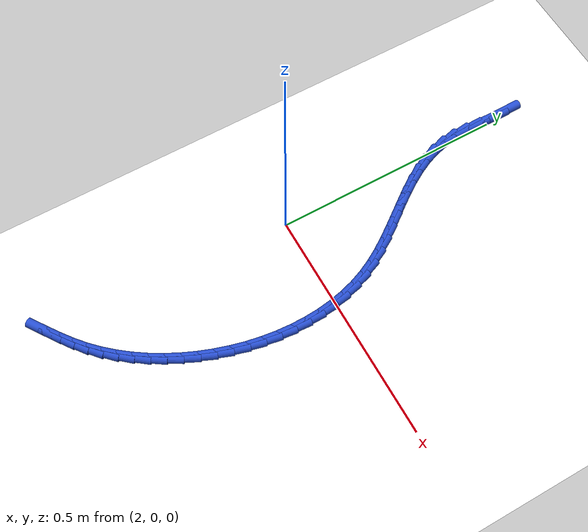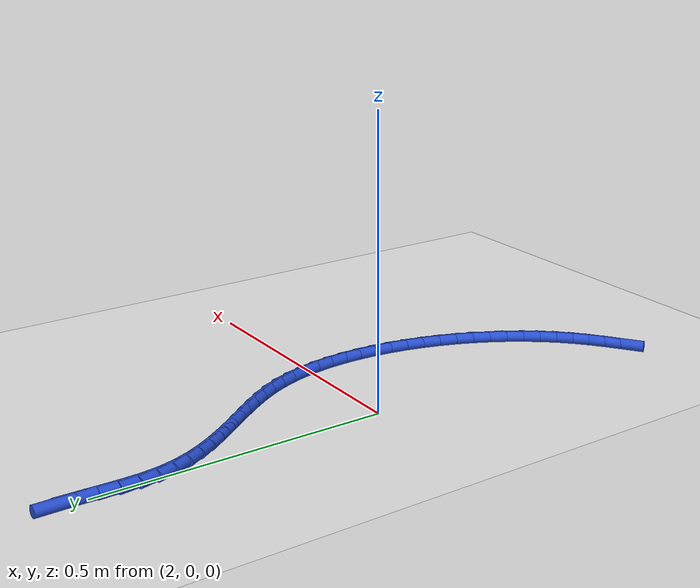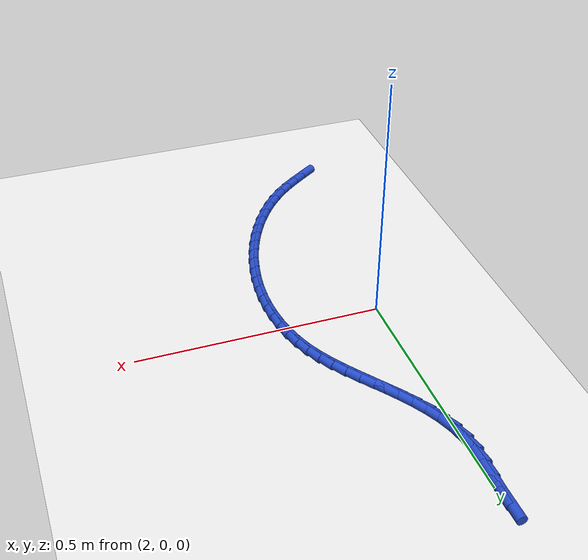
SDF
<sdf version="1.6">
 <world name="default">
  <model name="ground_plane">
   <static>1</static>
   <link name="link">
    <collision name="collision">
     <geometry><plane><normal>0 0 1</normal><size>100 100</size></plane></geometry>
     <surface><friction><ode><mu>100</mu><mu2>50</mu2></ode></friction></surface>
    </collision>
    <visual name="visual">
     <cast_shadows>0</cast_shadows>
     <geometry><plane><normal>0 0 1</normal><size>100 100</size></plane></geometry>
     <material>
      <script><uri>file://media/materials/scripts/gazebo.material</uri><name>Gazebo/WhiteGlow</name></script>
     </material>
    </visual>
   </link>
  </model>
  <model name="line">
   <link name="link_100">
    <pose>1.9956747535121913 0.5427967264100142 0.01 0 1.57 -1.5616004342012524</pose>
    <collision name="collision">
     <geometry><cylinder><radius>0.01</radius><length>0.08</length></cylinder></geometry>
    </collision>
    <visual name="visual">
     <material>
      <script><name>Gazebo/Blue</name><uri>file://media/materials/scripts/gazebo.material</uri></script>
     </material>
     <geometry><cylinder><radius>0.01</radius><length>0.08</length></cylinder></geometry>
    </visual>
   </link>
   <link name="link_101">
    <pose>1.9959567368488869 0.5121335379058366 0.01 0 1.57 1.542704888067595</pose>
    <collision name="collision">
     <geometry><cylinder><radius>0.01</radius><length>0.08</length></cylinder></geometry>
    </collision>
    <visual name="visual">
     <material>
      <script><name>Gazebo/Blue</name><uri>file://media/materials/scripts/gazebo.material</uri></script>
     </material>
     <geometry><cylinder><radius>0.01</radius><length>0.08</length></cylinder></geometry>
    </visual>
   </link>
   <link name="link_102">
    <pose>1.9950695715106797 0.4805605034333756 0.01 0 1.57 1.548982520895223</pose>
    <collision name="collision">
     <geometry><cylinder><radius>0.01</radius><length>0.08</length></cylinder></geometry>
    </collision>
    <visual name="visual">
     <material>
      <script><name>Gazebo/Blue</name><uri>file://media/materials/scripts/gazebo.material</uri></script>
     </material>
     <geometry><cylinder><radius>0.01</radius><length>0.08</length></cylinder></geometry>
    </visual>
   </link>
   <link name="link_103">
    <pose>1.9943761075960889 0.44877540728026327 0.01 0 1.57 -1.5432280771006837</pose>
    <collision name="collision">
     <geometry><cylinder><radius>0.01</radius><length>0.08</length></cylinder></geometry>
    </collision>
    <visual name="visual">
     <material>
      <script><name>Gazebo/Blue</name><uri>file://media/materials/scripts/gazebo.material</uri></script>
     </material>
     <geometry><cylinder><radius>0.01</radius><length>0.08</length></cylinder></geometry>
    </visual>
   </link>
   <link name="link_104">
    <pose>1.995239195203635 0.41747603373413117 0.01 0 1.57 -1.4464241379671023</pose>
    <collision name="collision">
     <geometry><cylinder><radius>0.01</radius><length>0.08</length></cylinder></geometry>
    </collision>
    <visual name="visual">
     <material>
      <script><name>Gazebo/Blue</name><uri>file://media/materials/scripts/gazebo.material</uri></script>
     </material>
     <geometry><cylinder><radius>0.01</radius><length>0.08</length></cylinder></geometry>
    </visual>
   </link>
   <link name="link_105">
    <pose>1.9990052271721368 0.38735198643101076 0.01 0 1.57 -1.3220938351287175</pose>
    <collision name="collision">
     <geometry><cylinder><radius>0.01</radius><length>0.08</length></cylinder></geometry>
    </collision>
    <visual name="visual">
     <material>
      <script><name>Gazebo/Blue</name><uri>file://media/materials/scripts/gazebo.material</uri></script>
     </material>
     <geometry><cylinder><radius>0.01</radius><length>0.08</length></cylinder></geometry>
    </visual>
   </link>
   <link name="link_106">
    <pose>2.0062759272005732 0.35872270538905116 0.01 0 1.57 -1.2089467725305336</pose>
    <collision name="collision">
     <geometry><cylinder><radius>0.01</radius><length>0.08</length></cylinder></geometry>
    </collision>
    <visual name="visual">
     <material>
      <script><name>Gazebo/Blue</name><uri>file://media/materials/scripts/gazebo.material</uri></script>
     </material>
     <geometry><cylinder><radius>0.01</radius><length>0.08</length></cylinder></geometry>
    </visual>
   </link>
   <link name="link_107">
    <pose>2.0166201911352037 0.3313942277281797 0.01 0 1.57 -1.1138434668605544</pose>
    <collision name="collision">
     <geometry><cylinder><radius>0.01</radius><length>0.08</length></cylinder></geometry>
    </collision>
    <visual name="visual">
     <material>
      <script><name>Gazebo/Blue</name><uri>file://media/materials/scripts/gazebo.material</uri></script>
     </material>
     <geometry><cylinder><radius>0.01</radius><length>0.08</length></cylinder></geometry>
    </visual>
   </link>
   <link name="link_108">
    <pose>2.0295308856788794 0.3051347976462276 0.01 0 1.57 -1.0386108582251625</pose>
    <collision name="collision">
     <geometry><cylinder><radius>0.01</radius><length>0.08</length></cylinder></geometry>
    </collision>
    <visual name="visual">
     <material>
      <script><name>Gazebo/Blue</name><uri>file://media/materials/scripts/gazebo.material</uri></script>
     </material>
     <geometry><cylinder><radius>0.01</radius><length>0.08</length></cylinder></geometry>
    </visual>
   </link>
   <link name="link_109">
    <pose>2.0445008775344506 0.2797126593410275 0.01 0 1.57 -0.9834145669036674</pose>
    <collision name="collision">
     <geometry><cylinder><radius>0.01</radius><length>0.08</length></cylinder></geometry>
    </collision>
    <visual name="visual">
     <material>
      <script><name>Gazebo/Blue</name><uri>file://media/materials/scripts/gazebo.material</uri></script>
     </material>
     <geometry><cylinder><radius>0.01</radius><length>0.08</length></cylinder></geometry>
    </visual>
   </link>
   <link name="link_110">
    <pose>2.0610230334047674 0.2548960570104107 0.01 0 1.57 -0.9476264508870635</pose>
    <collision name="collision">
     <geometry><cylinder><radius>0.01</radius><length>0.08</length></cylinder></geometry>
    </collision>
    <visual name="visual">
     <material>
      <script><name>Gazebo/Blue</name><uri>file://media/materials/scripts/gazebo.material</uri></script>
     </material>
     <geometry><cylinder><radius>0.01</radius><length>0.08</length></cylinder></geometry>
    </visual>
   </link>
   <link name="link_111">
    <pose>2.0785902199926802 0.2304532348522091 0.01 0 1.57 -0.9304767165298805</pose>
    <collision name="collision">
     <geometry><cylinder><radius>0.01</radius><length>0.08</length></cylinder></geometry>
    </collision>
    <visual name="visual">
     <material>
      <script><name>Gazebo/Blue</name><uri>file://media/materials/scripts/gazebo.material</uri></script>
     </material>
     <geometry><cylinder><radius>0.01</radius><length>0.08</length></cylinder></geometry>
    </visual>
   </link>
   <link name="link_112">
    <pose>2.0966953040010403 0.20615243706425412 0.01 0 1.57 -0.9314288822455244</pose>
    <collision name="collision">
     <geometry><cylinder><radius>0.01</radius><length>0.08</length></cylinder></geometry>
    </collision>
    <visual name="visual">
     <material>
      <script><name>Gazebo/Blue</name><uri>file://media/materials/scripts/gazebo.material</uri></script>
     </material>
     <geometry><cylinder><radius>0.01</radius><length>0.08</length></cylinder></geometry>
    </visual>
   </link>
   <link name="link_113">
    <pose>2.114831152132697 0.1817619078443783 0.01 0 1.57 -0.9503314775667263</pose>
    <collision name="collision">
     <geometry><cylinder><radius>0.01</radius><length>0.08</length></cylinder></geometry>
    </collision>
    <visual name="visual">
     <material>
      <script><name>Gazebo/Blue</name><uri>file://media/materials/scripts/gazebo.material</uri></script>
     </material>
     <geometry><cylinder><radius>0.01</radius><length>0.08</length></cylinder></geometry>
    </visual>
   </link>
   <link name="link_114">
    <pose>2.1324906310905014 0.15704989139041303 0.01 0 1.57 -0.9873983628609555</pose>
    <collision name="collision">
     <geometry><cylinder><radius>0.01</radius><length>0.08</length></cylinder></geometry>
    </collision>
    <visual name="visual">
     <material>
      <script><name>Gazebo/Blue</name><uri>file://media/materials/scripts/gazebo.material</uri></script>
     </material>
     <geometry><cylinder><radius>0.01</radius><length>0.08</length></cylinder></geometry>
    </visual>
   </link>
   <link name="link_115">
    <pose>2.1491666075773046 0.13178463190018988 0.01 0 1.57 -1.0430267710037908</pose>
    <collision name="collision">
     <geometry><cylinder><radius>0.01</radius><length>0.08</length></cylinder></geometry>
    </collision>
    <visual name="visual">
     <material>
      <script><name>Gazebo/Blue</name><uri>file://media/materials/scripts/gazebo.material</uri></script>
     </material>
     <geometry><cylinder><radius>0.01</radius><length>0.08</length></cylinder></geometry>
    </visual>
   </link>
   <link name="link_116">
    <pose>2.1643519482959555 0.1057343735715412 0.01 0 1.57 -1.1174027740393182</pose>
    <collision name="collision">
     <geometry><cylinder><radius>0.01</radius><length>0.08</length></cylinder></geometry>
    </collision>
    <visual name="visual">
     <material>
      <script><name>Gazebo/Blue</name><uri>file://media/materials/scripts/gazebo.material</uri></script>
     </material>
     <geometry><cylinder><radius>0.01</radius><length>0.08</length></cylinder></geometry>
    </visual>
   </link>
   <link name="link_117">
    <pose>2.177540087112429 0.07866775455830212 0.01 0 1.57 -1.203927568582719</pose>
    <collision name="collision">
     <geometry><cylinder><radius>0.01</radius><length>0.08</length></cylinder></geometry>
    </collision>
    <visual name="visual">
     <material>
      <script><name>Gazebo/Blue</name><uri>file://media/materials/scripts/gazebo.material</uri></script>
     </material>
     <geometry><cylinder><radius>0.01</radius><length>0.08</length></cylinder></geometry>
    </visual>
   </link>
   <link name="link_118">
    <pose>2.188379042946714 0.05046078901886694 0.01 0 1.57 -1.287659475232299</pose>
    <collision name="collision">
     <geometry><cylinder><radius>0.01</radius><length>0.08</length></cylinder></geometry>
    </collision>
    <visual name="visual">
     <material>
      <script><name>Gazebo/Blue</name><uri>file://media/materials/scripts/gazebo.material</uri></script>
     </material>
     <geometry><cylinder><radius>0.01</radius><length>0.08</length></cylinder></geometry>
    </visual>
   </link>
   <link name="link_119">
    <pose>2.19688035680291 0.0212419964344065 0.01 0 1.57 -1.3665581525442407</pose>
    <collision name="collision">
     <geometry><cylinder><radius>0.01</radius><length>0.08</length></cylinder></geometry>
    </collision>
    <visual name="visual">
     <material>
      <script><name>Gazebo/Blue</name><uri>file://media/materials/scripts/gazebo.material</uri></script>
     </material>
     <geometry><cylinder><radius>0.01</radius><length>0.08</length></cylinder></geometry>
    </visual>
   </link>
   <link name="link_120">
    <pose>2.2031077785289632 -0.008823839036895492 0.01 0 1.57 -1.44088086937198</pose>
    <collision name="collision">
     <geometry><cylinder><radius>0.01</radius><length>0.08</length></cylinder></geometry>
    </collision>
    <visual name="visual">
     <material>
      <script><name>Gazebo/Blue</name><uri>file://media/materials/scripts/gazebo.material</uri></script>
     </material>
     <geometry><cylinder><radius>0.01</radius><length>0.08</length></cylinder></geometry>
    </visual>
   </link>
   <link name="link_121">
    <pose>2.2071250579728177 -0.03957193323685642 0.01 0 1.57 -1.511029021479768</pose>
    <collision name="collision">
     <geometry><cylinder><radius>0.01</radius><length>0.08</length></cylinder></geometry>
    </collision>
    <visual name="visual">
     <material>
      <script><name>Gazebo/Blue</name><uri>file://media/materials/scripts/gazebo.material</uri></script>
     </material>
     <geometry><cylinder><radius>0.01</radius><length>0.08</length></cylinder></geometry>
    </visual>
   </link>
   <link name="link_122">
    <pose>2.208995944982418 -0.0708375020072934 0.01 0 1.57 1.56409917090171</pose>
    <collision name="collision">
     <geometry><cylinder><radius>0.01</radius><length>0.08</length></cylinder></geometry>
    </collision>
    <visual name="visual">
     <material>
      <script><name>Gazebo/Blue</name><uri>file://media/materials/scripts/gazebo.material</uri></script>
     </material>
     <geometry><cylinder><radius>0.01</radius><length>0.08</length></cylinder></geometry>
    </visual>
   </link>
   <link name="link_123">
    <pose>2.2087841894057108 -0.10245576119002348 0.01 0 1.57 1.500778396824646</pose>
    <collision name="collision">
     <geometry><cylinder><radius>0.01</radius><length>0.08</length></cylinder></geometry>
    </collision>
    <visual name="visual">
     <material>
      <script><name>Gazebo/Blue</name><uri>file://media/materials/scripts/gazebo.material</uri></script>
     </material>
     <geometry><cylinder><radius>0.01</radius><length>0.08</length></cylinder></geometry>
    </visual>
   </link>
   <link name="link_124">
    <pose>2.206553541090639 -0.13426192662686365 0.01 0 1.57 1.4400391265230978</pose>
    <collision name="collision">
     <geometry><cylinder><radius>0.01</radius><length>0.08</length></cylinder></geometry>
    </collision>
    <visual name="visual">
     <material>
      <script><name>Gazebo/Blue</name><uri>file://media/materials/scripts/gazebo.material</uri></script>
     </material>
     <geometry><cylinder><radius>0.01</radius><length>0.08</length></cylinder></geometry>
    </visual>
   </link>
   <link name="link_125">
    <pose>2.2023677498851484 -0.16609121415963196 0.01 0 1.57 1.3813129609800958</pose>
    <collision name="collision">
     <geometry><cylinder><radius>0.01</radius><length>0.08</length></cylinder></geometry>
    </collision>
    <visual name="visual">
     <material>
      <script><name>Gazebo/Blue</name><uri>file://media/materials/scripts/gazebo.material</uri></script>
     </material>
     <geometry><cylinder><radius>0.01</radius><length>0.08</length></cylinder></geometry>
    </visual>
   </link>
   <link name="link_126">
    <pose>2.1962905656371836 -0.19777883963014364 0.01 0 1.57 1.3240329744669315</pose>
    <collision name="collision">
     <geometry><cylinder><radius>0.01</radius><length>0.08</length></cylinder></geometry>
    </collision>
    <visual name="visual">
     <material>
      <script><name>Gazebo/Blue</name><uri>file://media/materials/scripts/gazebo.material</uri></script>
     </material>
     <geometry><cylinder><radius>0.01</radius><length>0.08</length></cylinder></geometry>
    </visual>
   </link>
   <link name="link_127">
    <pose>2.1883857381946905 -0.22916001888021673 0.01 0 1.57 1.2676355558678059</pose>
    <collision name="collision">
     <geometry><cylinder><radius>0.01</radius><length>0.08</length></cylinder></geometry>
    </collision>
    <visual name="visual">
     <material>
      <script><name>Gazebo/Blue</name><uri>file://media/materials/scripts/gazebo.material</uri></script>
     </material>
     <geometry><cylinder><radius>0.01</radius><length>0.08</length></cylinder></geometry>
    </visual>
   </link>
   <link name="link_128">
    <pose>2.178717017405613 -0.26006996775166813 0.01 0 1.57 1.211558366653136</pose>
    <collision name="collision">
     <geometry><cylinder><radius>0.01</radius><length>0.08</length></cylinder></geometry>
    </collision>
    <visual name="visual">
     <material>
      <script><name>Gazebo/Blue</name><uri>file://media/materials/scripts/gazebo.material</uri></script>
     </material>
     <geometry><cylinder><radius>0.01</radius><length>0.08</length></cylinder></geometry>
    </visual>
   </link>
   <link name="link_129">
    <pose>2.167348153117897 -0.29034390208631505 0.01 0 1.57 1.1552359568248576</pose>
    <collision name="collision">
     <geometry><cylinder><radius>0.01</radius><length>0.08</length></cylinder></geometry>
    </collision>
    <visual name="visual">
     <material>
      <script><name>Gazebo/Blue</name><uri>file://media/materials/scripts/gazebo.material</uri></script>
     </material>
     <geometry><cylinder><radius>0.01</radius><length>0.08</length></cylinder></geometry>
    </visual>
   </link>
   <link name="link_130">
    <pose>2.1543428951794867 -0.3198170377259745 0.01 0 1.57 1.0980943002610621</pose>
    <collision name="collision">
     <geometry><cylinder><radius>0.01</radius><length>0.08</length></cylinder></geometry>
    </collision>
    <visual name="visual">
     <material>
      <script><name>Gazebo/Blue</name><uri>file://media/materials/scripts/gazebo.material</uri></script>
     </material>
     <geometry><cylinder><radius>0.01</radius><length>0.08</length></cylinder></geometry>
    </visual>
   </link>
   <link name="link_131">
    <pose>2.139764993438327 -0.34832459051246356 0.01 0 1.57 1.0395454198531673</pose>
    <collision name="collision">
     <geometry><cylinder><radius>0.01</radius><length>0.08</length></cylinder></geometry>
    </collision>
    <visual name="visual">
     <material>
      <script><name>Gazebo/Blue</name><uri>file://media/materials/scripts/gazebo.material</uri></script>
     </material>
     <geometry><cylinder><radius>0.01</radius><length>0.08</length></cylinder></geometry>
    </visual>
   </link>
   <link name="link_132">
    <pose>2.123678197742363 -0.37570177628759993 0.01 0 1.57 0.9789833960832256</pose>
    <collision name="collision">
     <geometry><cylinder><radius>0.01</radius><length>0.08</length></cylinder></geometry>
    </collision>
    <visual name="visual">
     <material>
      <script><name>Gazebo/Blue</name><uri>file://media/materials/scripts/gazebo.material</uri></script>
     </material>
     <geometry><cylinder><radius>0.01</radius><length>0.08</length></cylinder></geometry>
    </visual>
   </link>
   <link name="link_133">
    <pose>2.1061462579395402 -0.4017838108931993 0.01 0 1.57 0.9157834103669138</pose>
    <collision name="collision">
     <geometry><cylinder><radius>0.01</radius><length>0.08</length></cylinder></geometry>
    </collision>
    <visual name="visual">
     <material>
      <script><name>Gazebo/Blue</name><uri>file://media/materials/scripts/gazebo.material</uri></script>
     </material>
     <geometry><cylinder><radius>0.01</radius><length>0.08</length></cylinder></geometry>
    </visual>
   </link>
   <link name="link_134">
    <pose>2.087232923877803 -0.42640591017107954 0.01 0 1.57 0.8493060749176448</pose>
    <collision name="collision">
     <geometry><cylinder><radius>0.01</radius><length>0.08</length></cylinder></geometry>
    </collision>
    <visual name="visual">
     <material>
      <script><name>Gazebo/Blue</name><uri>file://media/materials/scripts/gazebo.material</uri></script>
     </material>
     <geometry><cylinder><radius>0.01</radius><length>0.08</length></cylinder></geometry>
    </visual>
   </link>
   <link name="link_135">
    <pose>2.0670019454050963 -0.44940328996305745 0.01 0 1.57 0.7789101061416678</pose>
    <collision name="collision">
     <geometry><cylinder><radius>0.01</radius><length>0.08</length></cylinder></geometry>
    </collision>
    <visual name="visual">
     <material>
      <script><name>Gazebo/Blue</name><uri>file://media/materials/scripts/gazebo.material</uri></script>
     </material>
     <geometry><cylinder><radius>0.01</radius><length>0.08</length></cylinder></geometry>
    </visual>
   </link>
   <link name="link_136">
    <pose>2.045517072369365 -0.4706111661109503 0.01 0 1.57 0.7072713927182678</pose>
    <collision name="collision">
     <geometry><cylinder><radius>0.01</radius><length>0.08</length></cylinder></geometry>
    </collision>
    <visual name="visual">
     <material>
      <script><name>Gazebo/Blue</name><uri>file://media/materials/scripts/gazebo.material</uri></script>
     </material>
     <geometry><cylinder><radius>0.01</radius><length>0.08</length></cylinder></geometry>
    </visual>
   </link>
   <link name="link_137">
    <pose>2.0228733749190844 -0.48996689183560255 0.01 0 1.57 0.6502815372478757</pose>
    <collision name="collision">
     <geometry><cylinder><radius>0.01</radius><length>0.08</length></cylinder></geometry>
    </collision>
    <visual name="visual">
     <material>
      <script><name>Gazebo/Blue</name><uri>file://media/materials/scripts/gazebo.material</uri></script>
     </material>
     <geometry><cylinder><radius>0.01</radius><length>0.08</length></cylinder></geometry>
    </visual>
   </link>
   <link name="link_138">
    <pose>1.9993131528191133 -0.507887944969641 0.01 0 1.57 0.6137975674696347</pose>
    <collision name="collision">
     <geometry><cylinder><radius>0.01</radius><length>0.08</length></cylinder></geometry>
    </collision>
    <visual name="visual">
     <material>
      <script><name>Gazebo/Blue</name><uri>file://media/materials/scripts/gazebo.material</uri></script>
     </material>
     <geometry><cylinder><radius>0.01</radius><length>0.08</length></cylinder></geometry>
    </visual>
   </link>
   <link name="link_139">
    <pose>1.975121928892544 -0.5249327563316741 0.01 0 1.57 0.5983480234033017</pose>
    <collision name="collision">
     <geometry><cylinder><radius>0.01</radius><length>0.08</length></cylinder></geometry>
    </collision>
    <visual name="visual">
     <material>
      <script><name>Gazebo/Blue</name><uri>file://media/materials/scripts/gazebo.material</uri></script>
     </material>
     <geometry><cylinder><radius>0.01</radius><length>0.08</length></cylinder></geometry>
    </visual>
   </link>
  </model>
 </world>
</sdf>
